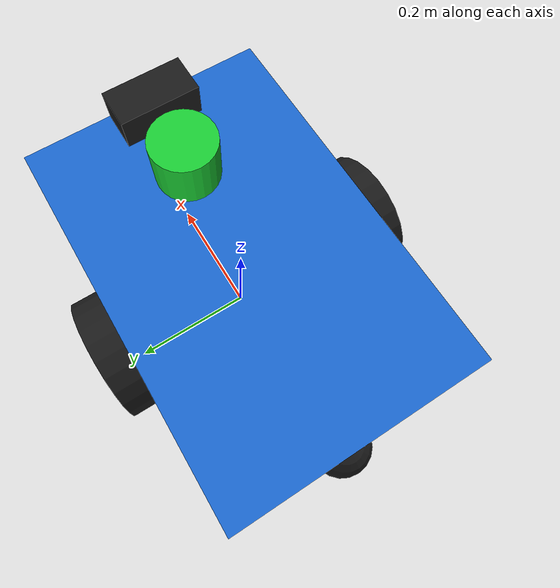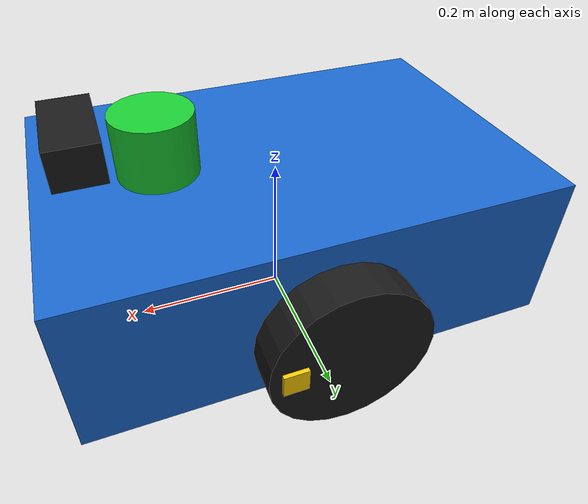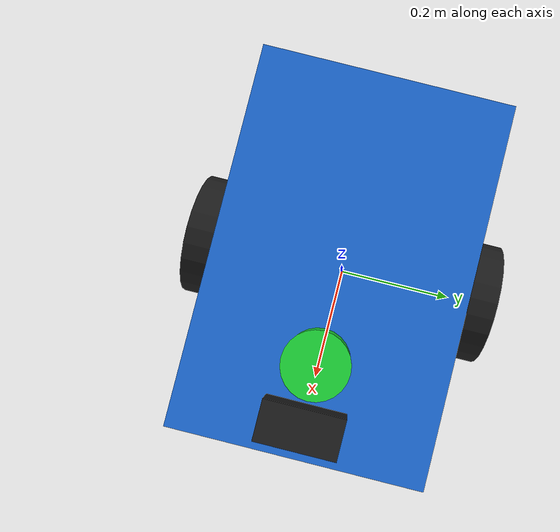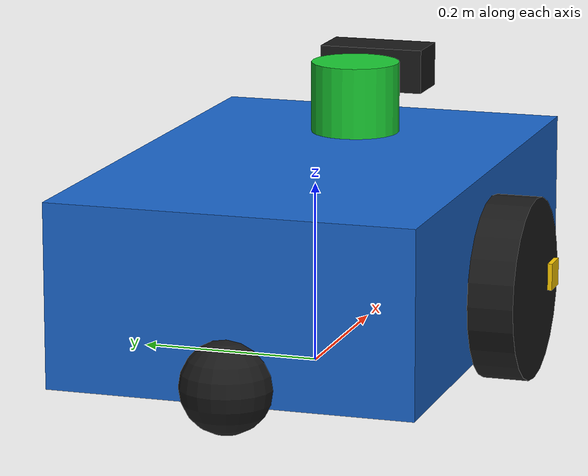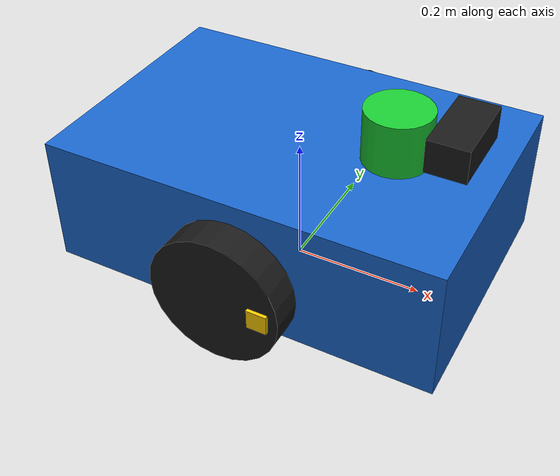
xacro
<?xml version="1.0"?>

<robot xmlns:xacro="http://www.ros.org/wiki/xacro"
  name="diff_drive_robot">

  <xacro:arg name="enable_dataset_camera" default="false" />

  <!-- Chassis dimensions, in metres -->
  <xacro:property name="base_length" value="0.6" />
  <xacro:property name="base_width" value="0.4" />
  <xacro:property name="base_height" value="0.2" />
  <xacro:property name="base_mass" value="5.0" />
  <xacro:property name="ground_clearance" value="0.03" />

  <!-- Wheel dimensions, in metres -->
  <xacro:property name="wheel_radius" value="0.1" />
  <xacro:property name="wheel_width" value="0.05" />
  <xacro:property name="wheel_mass" value="0.5" />

  <!-- Rear ball caster -->
  <xacro:property name="caster_radius" value="0.05" />
  <xacro:property name="caster_mass" value="0.2" />
  <xacro:property name="caster_x_offset" value="-0.30" />

  <!-- Distance from the robot centre to each wheel centre -->
  <xacro:property
    name="wheel_y_offset"
    value="${base_width / 2.0 + wheel_width / 2.0}" />

  <!-- 2D lidar dimensions -->
  <xacro:property name="lidar_radius" value="0.05" />
  <xacro:property name="lidar_height" value="0.08" />
  <xacro:property name="lidar_mass" value="0.2" />
  <xacro:property name="lidar_x_offset" value="0.15" />

  <!-- Reusable colours -->
  <material name="blue">
    <color rgba="0.1 0.4 0.8 1.0" />
  </material>

  <material name="dark_grey">
    <color rgba="0.1 0.1 0.1 1.0" />
  </material>

  <material name="yellow">
    <color rgba="1.0 0.8 0.0 1.0" />
  </material>

  <material name="lidar_green">
    <color rgba="0.1 0.8 0.2 1.0" />
  </material>

  <!-- Ground reference frame -->
  <link name="base_footprint" />

  <!-- Main chassis -->
  <link name="base_link">

    <!-- What the robot looks like -->
    <visual>
      <origin xyz="0 0 0" rpy="0 0 0" />

      <geometry>
        <box size="${base_length} ${base_width} ${base_height}" />
      </geometry>

      <material name="blue" />
    </visual>

    <!-- Shape used by the physics engine for collisions -->
    <collision>
      <origin xyz="0 0 0" rpy="0 0 0" />

      <geometry>
        <box size="${base_length} ${base_width} ${base_height}" />
      </geometry>
    </collision>

    <!-- Mass and mass distribution -->
    <inertial>
      <origin xyz="0 0 0" rpy="0 0 0" />

      <mass value="${base_mass}" />

      <inertia
        ixx="${base_mass * (base_width * base_width + base_height * base_height) / 12.0}"
        ixy="0.0"
        ixz="0.0"
        iyy="${base_mass * (base_length * base_length + base_height * base_height) / 12.0}"
        iyz="0.0"
        izz="${base_mass * (base_length * base_length + base_width * base_width) / 12.0}" />
    </inertial>

  </link>

  <!-- Place the chassis centre above the ground -->
  <joint name="base_footprint_joint" type="fixed">
    <parent link="base_footprint" />
    <child link="base_link" />
    <origin
      xyz="0 0 ${ground_clearance + base_height / 2.0}"
      rpy="0 0 0" />
  </joint>

  <!--
    Define one reusable wheel template.

    prefix:
      Creates names such as left_wheel_link and right_wheel_link.

    y_position:
      Places the wheel on the left or right side.
  -->
  <xacro:macro name="wheel" params="prefix y_position">

    <link name="${prefix}_wheel_link">

      <!-- Main cylindrical wheel -->
      <visual>
        <origin xyz="0 0 0" rpy="${pi / 2.0} 0 0" />

        <geometry>
          <cylinder
            radius="${wheel_radius}"
            length="${wheel_width}" />
        </geometry>

        <material name="dark_grey" />
      </visual>

      <!--
        A yellow marker makes rotation visible.
        A plain cylinder looks identical after rotating.
      -->
      <visual>
        <origin
          xyz="${wheel_radius * 0.7} 0 0"
          rpy="0 0 0" />

        <geometry>
          <box
            size="0.03 ${wheel_width + 0.01} 0.03" />
        </geometry>

        <material name="yellow" />
      </visual>

      <!-- Cylindrical collision shape -->
      <collision>
        <origin xyz="0 0 0" rpy="${pi / 2.0} 0 0" />

        <geometry>
          <cylinder
            radius="${wheel_radius}"
            length="${wheel_width}" />
        </geometry>
      </collision>

      <!--
        Inertia of a solid cylinder whose rotation axis is Y.
      -->
      <inertial>
        <origin xyz="0 0 0" rpy="0 0 0" />

        <mass value="${wheel_mass}" />

        <inertia
          ixx="${wheel_mass * (3.0 * wheel_radius * wheel_radius + wheel_width * wheel_width) / 12.0}"
          ixy="0.0"
          ixz="0.0"
          iyy="${wheel_mass * wheel_radius * wheel_radius / 2.0}"
          iyz="0.0"
          izz="${wheel_mass * (3.0 * wheel_radius * wheel_radius + wheel_width * wheel_width) / 12.0}" />
      </inertial>
    </link>

    <joint name="${prefix}_wheel_joint" type="continuous">
      <parent link="base_link" />
      <child link="${prefix}_wheel_link" />

      <origin
        xyz="0 ${y_position} ${wheel_radius - (ground_clearance + base_height / 2.0)}"
        rpy="0 0 0" />

      <axis xyz="0 1 0" />
    </joint>

  </xacro:macro>

  <!-- Create the left wheel from the template -->
  <xacro:wheel
    prefix="left"
    y_position="${wheel_y_offset}" />

  <!-- Create the right wheel from the same template -->
  <xacro:wheel
    prefix="right"
    y_position="${-wheel_y_offset}" />
  <!-- Rear ball caster used to support the chassis -->
  <link name="caster_link">

    <visual>
      <origin xyz="0 0 0" rpy="0 0 0" />

      <geometry>
        <sphere radius="${caster_radius}" />
      </geometry>

      <material name="dark_grey" />
    </visual>

    <collision>
      <origin xyz="0 0 0" rpy="0 0 0" />

      <geometry>
        <sphere radius="${caster_radius}" />
      </geometry>
    </collision>

    <!-- Inertia of a solid sphere -->
    <inertial>
      <origin xyz="0 0 0" rpy="0 0 0" />

      <mass value="${caster_mass}" />

      <inertia
        ixx="${2.0 * caster_mass * caster_radius * caster_radius / 5.0}"
        ixy="0.0"
        ixz="0.0"
        iyy="${2.0 * caster_mass * caster_radius * caster_radius / 5.0}"
        iyz="0.0"
        izz="${2.0 * caster_mass * caster_radius * caster_radius / 5.0}" />
    </inertial>

  </link>

  <joint name="caster_joint" type="fixed">
    <parent link="base_link" />
    <child link="caster_link" />

    <origin
      xyz="${caster_x_offset} 0 ${caster_radius - (ground_clearance + base_height / 2.0)}"
      rpy="0 0 0" />
  </joint>

  <gazebo reference="caster_link">
    <mu1>0.01</mu1>
    <mu2>0.01</mu2>
  </gazebo>

  <!-- Drive wheels retain high traction in both contact directions. -->
  <gazebo reference="left_wheel_link">
    <mu1>1.0</mu1>
    <mu2>1.0</mu2>
  </gazebo>

  <gazebo reference="right_wheel_link">
    <mu1>1.0</mu1>
    <mu2>1.0</mu2>
  </gazebo>

  <!-- 2D lidar body -->
  <link name="lidar_link">

    <visual>
      <origin xyz="0 0 0" rpy="0 0 0" />

      <geometry>
        <cylinder
          radius="${lidar_radius}"
          length="${lidar_height}" />
      </geometry>

      <material name="lidar_green" />
    </visual>

    <collision>
      <origin xyz="0 0 0" rpy="0 0 0" />

      <geometry>
        <cylinder
          radius="${lidar_radius}"
          length="${lidar_height}" />
      </geometry>
    </collision>

    <!-- Inertia of a solid cylinder whose axis is Z -->
    <inertial>
      <origin xyz="0 0 0" rpy="0 0 0" />

      <mass value="${lidar_mass}" />

      <inertia
        ixx="${lidar_mass * (3.0 * lidar_radius * lidar_radius + lidar_height * lidar_height) / 12.0}"
        ixy="0.0"
        ixz="0.0"
        iyy="${lidar_mass * (3.0 * lidar_radius * lidar_radius + lidar_height * lidar_height) / 12.0}"
        iyz="0.0"
        izz="${lidar_mass * lidar_radius * lidar_radius / 2.0}" />
    </inertial>

  </link>

  <!-- Mount the lidar on top of the chassis -->
  <joint name="lidar_joint" type="fixed">
    <parent link="base_link" />
    <child link="lidar_link" />

    <origin
      xyz="${lidar_x_offset} 0 ${base_height / 2.0 + lidar_height / 2.0}"
      rpy="0 0 0" />
  </joint>

  <!-- RGB-D camera body -->
  <link name="camera_link">

    <!--
      This box is only the visible camera housing.
      The actual image is generated by the Gazebo sensor below.
    -->
    <visual>
      <origin xyz="0 0 0" rpy="0 0 0" />

      <geometry>
        <box size="0.06 0.12 0.05" />
      </geometry>

      <material name="dark_grey" />
    </visual>

  </link>

  <!-- Mount the camera near the front of the chassis -->
  <joint name="camera_joint" type="fixed">
    <parent link="base_link" />
    <child link="camera_link" />

    <origin
      xyz="${base_length / 2.0 - 0.06} 0 ${base_height / 2.0 + 0.06}"
      rpy="0 0 0" />
  </joint>

  <link name="camera_optical_link" />

  <joint name="camera_optical_joint" type="fixed">
    <parent link="camera_link" />
    <child link="camera_optical_link" />

    <origin
      xyz="0 0 0"
      rpy="${-pi / 2.0} 0 ${-pi / 2.0}" />
  </joint>

  <!-- Actual simulated RGB-D sensor -->
  <gazebo reference="camera_link">

    <sensor name="rgbd_camera" type="rgbd_camera">

      <!--
        This is the base topic name.
        Gazebo will publish subtopics such as:

          /camera/image
          /camera/depth_image
          /camera/camera_info
      -->
      <topic>/camera</topic>

      <!-- Frame written into the sensor messages -->
      <gz_frame_id>camera_optical_link</gz_frame_id>

      <!-- Generate ten RGB/depth frames per second -->
      <update_rate>10</update_rate>

      <camera>

        <!-- Horizontal field of view: about 60 degrees -->
        <horizontal_fov>1.0472</horizontal_fov>

        <image>
          <width>320</width>
          <height>240</height>
          <format>R8G8B8</format>
        </image>

        <!--
          Objects closer than 0.15 m or farther than 8 m
          are outside the usable camera range.
        -->
        <clip>
          <near>0.15</near>
          <far>8.0</far>
        </clip>

        <optical_frame_id>
          camera_optical_link
        </optical_frame_id>

      </camera>

      <always_on>true</always_on>

      <!-- Show the camera frustum inside Gazebo -->
      <visualize>true</visualize>

    </sensor>

    <xacro:if value="$(arg enable_dataset_camera)">
      <sensor name="dataset_segmentation_camera" type="segmentation">
        <topic>/camera/segmentation</topic>
        <gz_frame_id>camera_optical_link</gz_frame_id>
        <update_rate>10</update_rate>

        <camera>
          <segmentation_type>semantic</segmentation_type>
          <horizontal_fov>1.0472</horizontal_fov>

          <image>
            <width>320</width>
            <height>240</height>
          </image>

          <clip>
            <near>0.15</near>
            <far>8.0</far>
          </clip>

          <optical_frame_id>
            camera_optical_link
          </optical_frame_id>
        </camera>

        <always_on>true</always_on>
        <visualize>false</visualize>
      </sensor>
    </xacro:if>

  </gazebo>

  <!-- Gazebo GPU lidar sensor -->
  <gazebo reference="lidar_link">

    <sensor name="gpu_lidar" type="gpu_lidar">

      <topic>/scan</topic>
      <gz_frame_id>lidar_link</gz_frame_id>
      <update_rate>10</update_rate>

      <lidar>
        <scan>
          <horizontal>
            <samples>360</samples>
            <resolution>1</resolution>
            <min_angle>-${pi}</min_angle>
            <max_angle>${pi}</max_angle>
          </horizontal>
        </scan>

        <range>
          <min>0.12</min>
          <max>12.0</max>
          <resolution>0.01</resolution>
        </range>
      </lidar>

      <alwaysOn>1</alwaysOn>
      <visualize>true</visualize>

    </sensor>

  </gazebo>

  <!-- Gazebo differential-drive controller -->
  <gazebo>
    <plugin
      filename="gz-sim-diff-drive-system"
      name="gz::sim::systems::DiffDrive">

      <left_joint>left_wheel_joint</left_joint>
      <right_joint>right_wheel_joint</right_joint>

      <wheel_separation>${2.0 * wheel_y_offset}</wheel_separation>
      <wheel_radius>${wheel_radius}</wheel_radius>

      <odom_publish_frequency>30</odom_publish_frequency>

      <max_linear_acceleration>1.0</max_linear_acceleration>
      <min_linear_acceleration>-1.0</min_linear_acceleration>

      <max_angular_acceleration>2.0</max_angular_acceleration>
      <min_angular_acceleration>-2.0</min_angular_acceleration>

      <max_linear_velocity>0.5</max_linear_velocity>
      <min_linear_velocity>-0.5</min_linear_velocity>

      <max_angular_velocity>1.5</max_angular_velocity>
      <min_angular_velocity>-1.5</min_angular_velocity>

    </plugin>
  </gazebo>

  <gazebo>
    <plugin
      filename="gz-sim-odometry-publisher-system"
      name="gz::sim::systems::OdometryPublisher">
      <odom_frame>world</odom_frame>
      <robot_base_frame>base_footprint</robot_base_frame>
      <odom_publish_frequency>30</odom_publish_frequency>
      <odom_topic>
        /model/diff_drive_robot/ground_truth_odometry
      </odom_topic>
      <tf_topic>
        /model/diff_drive_robot/ground_truth_pose
      </tf_topic>
      <dimensions>2</dimensions>
    </plugin>
  </gazebo>

  <!-- Publish simulated joint positions inside Gazebo -->
  <gazebo>
    <plugin
      filename="gz-sim-joint-state-publisher-system"
      name="gz::sim::systems::JointStatePublisher" />
  </gazebo>

</robot>
